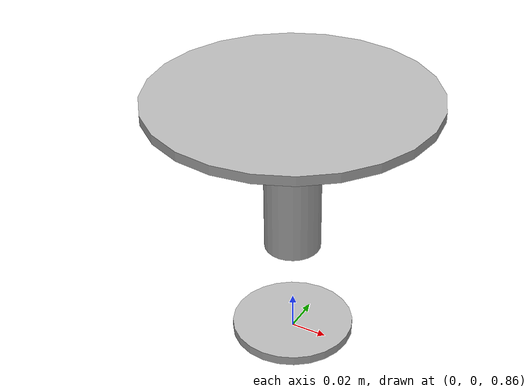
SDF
<?xml version="1.0" ?>
<sdf version="1.11">
  <model name="tvc_gimbal">
    <static>false</static>
    <link name="gimbal_plate">
      <pose>0 0 1 0 0 0</pose>
      <collision name="col">
        <geometry><cylinder><radius>0.075</radius><length>0.005</length></cylinder></geometry>
      </collision>
      <visual name="vis">
        <geometry><cylinder><radius>0.075</radius><length>0.005</length></cylinder></geometry>
      </visual>
    </link>

    <link name="extender">
      <pose relative_to="gimbal_plate">0 0 -0.044 0 0 0</pose>
      <collision name="col">
        <geometry><cylinder><radius>0.015</radius><length>0.083</length></cylinder></geometry>
      </collision>
      <visual name="vis">
        <geometry><cylinder><radius>0.015</radius><length>0.083</length></cylinder></geometry>
      </visual>
      <inertial>
        <mass>1.0</mass>
        <inertia>
          <ixx>0.001</ixx> <iyy>0.001</iyy> <izz>0.001</izz>
          <ixy>0</ixy> <ixz>0</ixz> <iyz>0</iyz>
        </inertia>
      </inertial>
    </link>

    <link name="gimbal_roll">
      <pose relative_to="extender">0 0 -0.0665 0 0 0</pose>
      <inertial>
        <mass>0.01</mass>
        <inertia>
          <ixx>0.001</ixx> <iyy>0.001</iyy> <izz>0.001</izz>
          <ixy>0</ixy> <ixz>0</ixz> <iyz>0</iyz>
        </inertia>
      </inertial>
    </link>

    <link name="gimbal_pitch">
      <pose relative_to="extender">0 0 -0.0665 0 0 0</pose>
      <inertial>
        <mass>0.01</mass>
        <inertia>
          <ixx>0.001</ixx> <iyy>0.001</iyy> <izz>0.001</izz>
          <ixy>0</ixy> <ixz>0</ixz> <iyz>0</iyz>
        </inertia>
      </inertial>
    </link>

    <link name="motor_housing">
      <pose relative_to="extender">0 0 -0.094 0 0 0</pose>
      <collision name="col">
        <geometry><cylinder><radius>0.033</radius><length>0.005</length></cylinder></geometry>
      </collision>
      <visual name="vis">
        <geometry><cylinder><radius>0.033</radius><length>0.005</length></cylinder></geometry>
      </visual>
      <inertial>
        <mass>0.01</mass>
        <inertia>
          <ixx>0.001</ixx> <iyy>0.001</iyy> <izz>0.001</izz>
          <ixy>0</ixy> <ixz>0</ixz> <iyz>0</iyz>
        </inertia>
      </inertial>
    </link>

    <joint name="gimbalplateTOworld" type="fixed">
        <parent>world</parent>
        <child>gimbal_plate</child>
    </joint>

    <joint name="extenderTOgimbalplate" type="fixed">
        <parent>gimbal_plate</parent>
        <child>extender</child>
    </joint>

    <joint name="gimbalrollTOextender" type="revolute">
        <parent>extender</parent>
        <child>gimbal_roll</child>
        <pose relative_to="gimbal_roll">0 0 0 0 0 0</pose>
        <axis>
          <xyz>1 0 0</xyz>
          <limit>
            <lower>-0.25</lower>
            <upper>0.25</upper>
            <velocity>0.25</velocity>
          </limit>
        </axis>
    </joint>

    <joint name="gimbalpitchTOgimbalroll" type="revolute">
        <parent>gimbal_roll</parent>
        <child>gimbal_pitch</child>
        <axis>
          <xyz>0 1 0</xyz>
          <limit>
            <lower>-0.25</lower>
            <upper>0.25</upper>
            <velocity>0.25</velocity>
          </limit>
        </axis>
    </joint>

    <joint name="gimbalpitchTOmotorhousing" type="fixed">
        <parent>gimbal_pitch</parent>
        <child>motor_housing</child>
    </joint>

    <plugin filename="gz-sim-joint-position-controller-system"
            name="gz::sim::systems::JointPositionController">
      <joint_name>gimbalrollTOextender</joint_name>
      <sub_topic>servo_0</sub_topic>
      <p_gain>1</p_gain>
      <i_gain>0</i_gain>
      <d_gain>0</d_gain>
    </plugin>

    <plugin filename="gz-sim-joint-position-controller-system"
            name="gz::sim::systems::JointPositionController">
      <joint_name>gimbalpitchTOgimbalroll</joint_name>
      <sub_topic>servo_1</sub_topic>
      <p_gain>1</p_gain>
      <i_gain>0</i_gain>
      <d_gain>0</d_gain>
    </plugin>

  </model>
</sdf>
